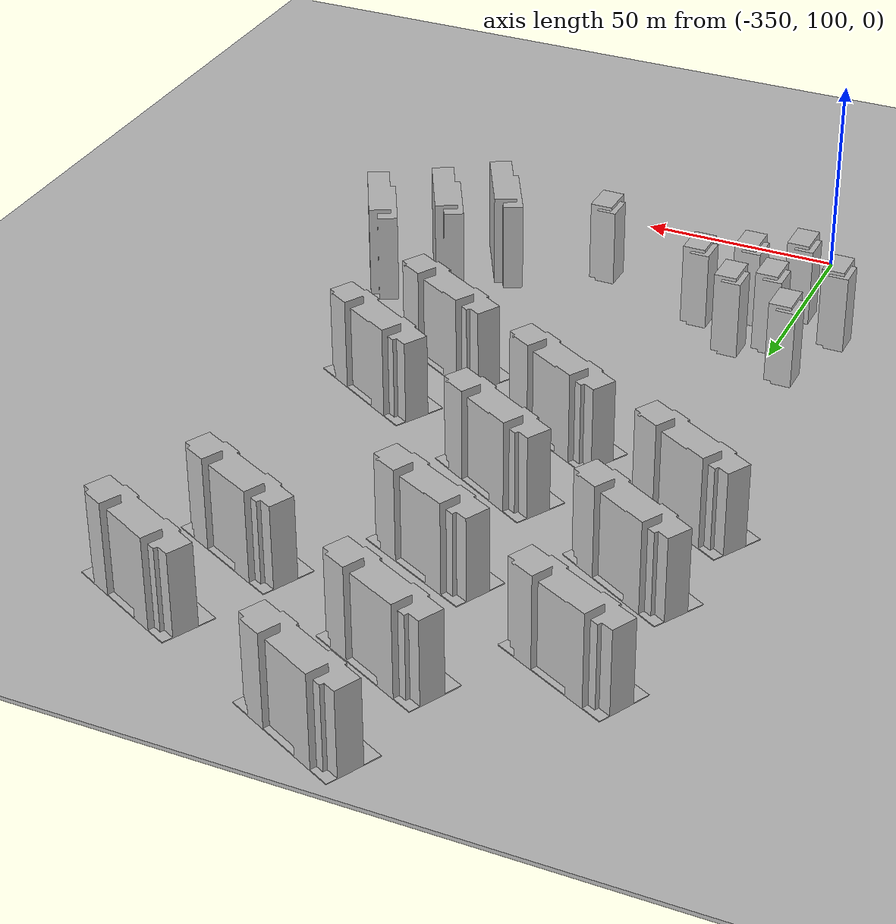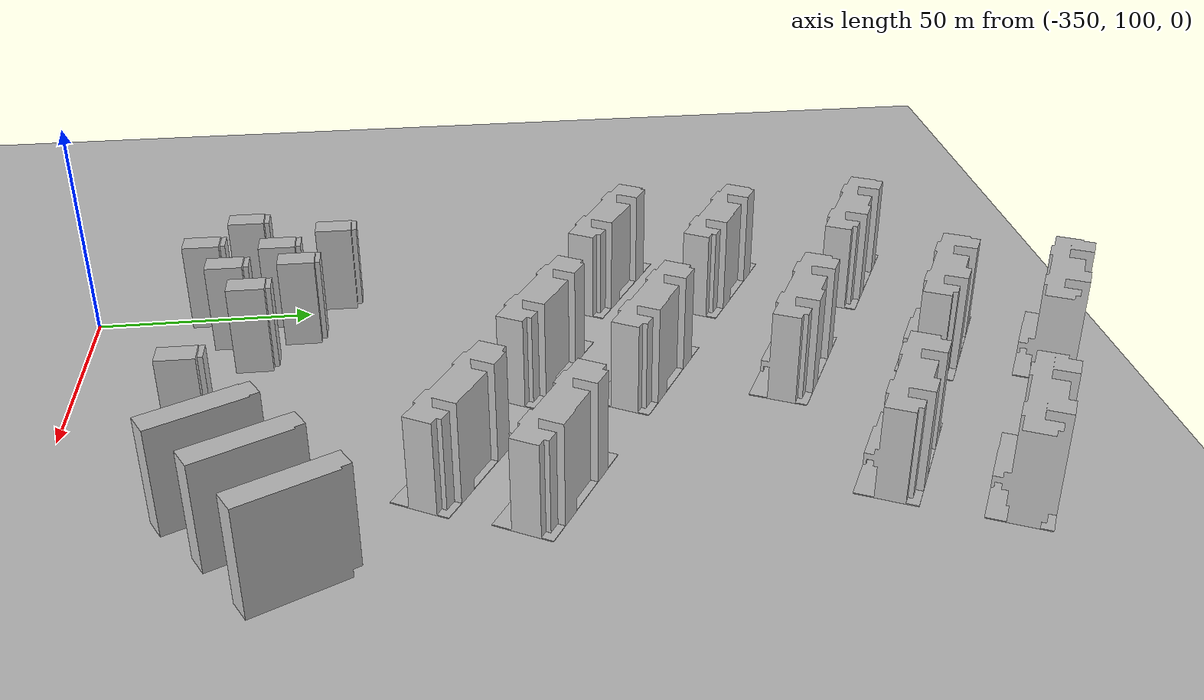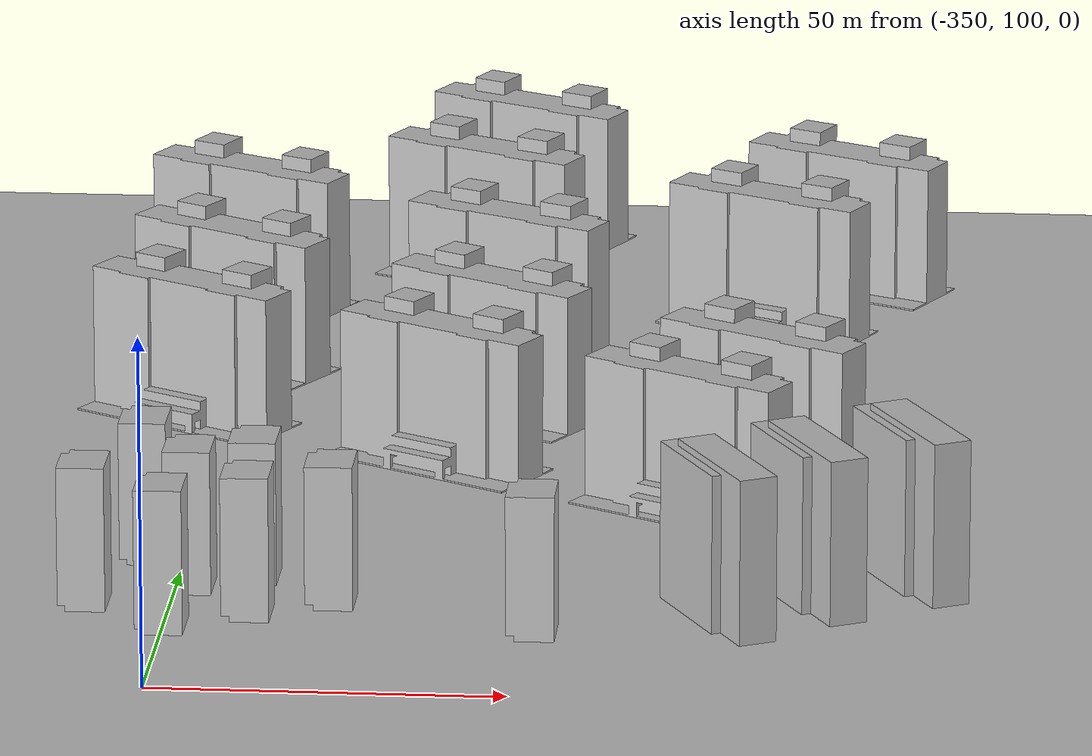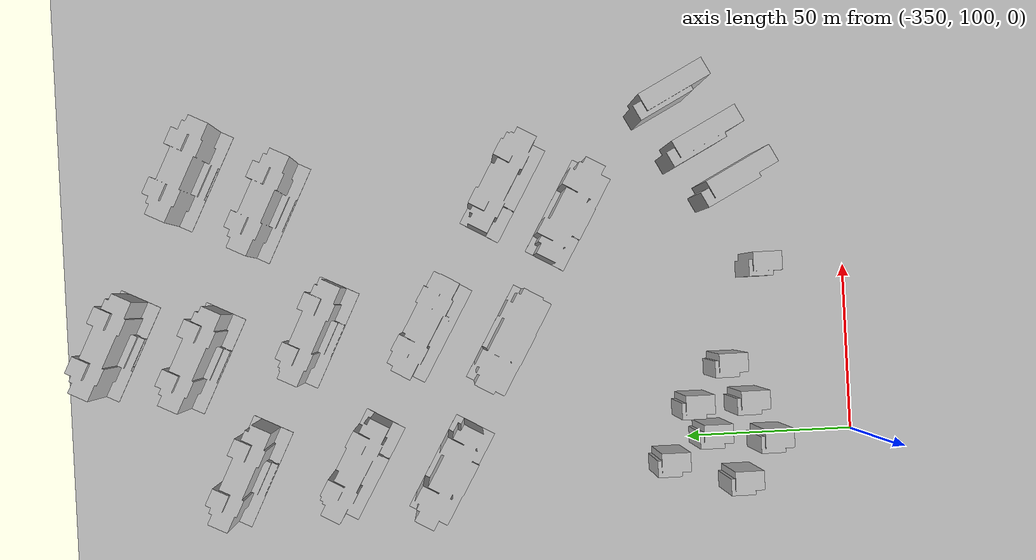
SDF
<sdf version="1.7">
 <world name="default">
  <model name="ground_plane">
   <static>1</static>
   <link name="link">
    <collision name="collision">
     <geometry><mesh><uri>model://ground_plane/scripts/plane.dae</uri><normal>0 0 1</normal></mesh></geometry>
     <surface><friction><ode><mu>100</mu><mu2>50</mu2></ode></friction></surface>
    </collision>
    <visual name="visual">
     <geometry><mesh><uri>model://ground_plane/scripts/plane.dae</uri><normal>0 0 1</normal></mesh></geometry>
     <material>
      <lighting>1</lighting>
      <script><uri>model://ground_plane/scripts/plane.jpg</uri><name>__default__</name></script>
      <shader type="pixel"/>
     </material>
    </visual>
   </link>
  </model>
  <model name="apartment0_clone">
   <static>1</static>
   <link name="link_0">
    <inertial>
     <mass>1</mass>
     <inertia>
      <ixx>0.166667</ixx>
      <ixy>0</ixy>
      <ixz>0</ixz>
      <iyy>0.166667</iyy>
      <iyz>0</iyz>
      <izz>0.166667</izz>
     </inertia>
    </inertial>
    <pose>0.000226 2e-06 0 0 -0 0</pose>
    <visual name="visual">
     <geometry>
      <mesh><uri>model://apartment0/scripts/apartment.dae</uri><scale>0.42 0.21 0.14</scale></mesh>
     </geometry>
     <material>
      <lighting>1</lighting>
      <script><uri>model://apartment0/scripts/building.jpg</uri><name>__default__</name></script>
      <shader type="pixel"/>
     </material>
    </visual>
    <collision name="collision">
     <geometry>
      <mesh><uri>model://apartment0/scripts/apartment.dae</uri><scale>0.42 0.21 0.14</scale></mesh>
     </geometry>
     <surface>
      <friction>
       <ode><mu>1</mu><mu2>1</mu2><fdir1>0 0 0</fdir1><slip1>0</slip1><slip2>0</slip2></ode>
       <torsional>
        <coefficient>1</coefficient>
        <patch_radius>0</patch_radius>
        <surface_radius>0</surface_radius>
        <use_patch_radius>1</use_patch_radius>
        <ode><slip>0</slip></ode>
       </torsional>
      </friction>
      <bounce><restitution_coefficient>0</restitution_coefficient><threshold>1e+06</threshold></bounce>
      <contact>
       <collide_without_contact>0</collide_without_contact>
       <collide_without_contact_bitmask>1</collide_without_contact_bitmask>
       <collide_bitmask>1</collide_bitmask>
       <ode>
        <soft_cfm>0</soft_cfm>
        <soft_erp>0.2</soft_erp>
        <kp>1e+13</kp>
        <kd>1</kd>
        <max_vel>0.01</max_vel>
        <min_depth>0</min_depth>
       </ode>
       <bullet>
        <split_impulse>1</split_impulse>
        <split_impulse_penetration_threshold>-0.01</split_impulse_penetration_threshold>
        <soft_cfm>0</soft_cfm>
        <soft_erp>0.2</soft_erp>
        <kp>1e+13</kp>
        <kd>1</kd>
       </bullet>
      </contact>
     </surface>
    </collision>
   </link>
   <static>0</static>
   <pose>-353.369 283.655 0.2281 0 0 -0.465657</pose>
  </model>
  <model name="apartment0_clone_0">
   <static>1</static>
   <link name="link_0">
    <inertial>
     <mass>1</mass>
     <inertia>
      <ixx>0.166667</ixx>
      <ixy>0</ixy>
      <ixz>0</ixz>
      <iyy>0.166667</iyy>
      <iyz>0</iyz>
      <izz>0.166667</izz>
     </inertia>
    </inertial>
    <pose>0.000226 2e-06 0 0 -0 0</pose>
    <visual name="visual">
     <geometry>
      <mesh><uri>model://apartment0/scripts/apartment.dae</uri><scale>0.42 0.21 0.14</scale></mesh>
     </geometry>
     <material>
      <lighting>1</lighting>
      <script><uri>model://apartment0/scripts/building.jpg</uri><name>__default__</name></script>
      <shader type="pixel"/>
     </material>
    </visual>
    <collision name="collision">
     <geometry>
      <mesh><uri>model://apartment0/scripts/apartment.dae</uri><scale>0.42 0.21 0.14</scale></mesh>
     </geometry>
     <surface>
      <friction>
       <ode><mu>1</mu><mu2>1</mu2><fdir1>0 0 0</fdir1><slip1>0</slip1><slip2>0</slip2></ode>
       <torsional>
        <coefficient>1</coefficient>
        <patch_radius>0</patch_radius>
        <surface_radius>0</surface_radius>
        <use_patch_radius>1</use_patch_radius>
        <ode><slip>0</slip></ode>
       </torsional>
      </friction>
      <bounce><restitution_coefficient>0</restitution_coefficient><threshold>1e+06</threshold></bounce>
      <contact>
       <collide_without_contact>0</collide_without_contact>
       <collide_without_contact_bitmask>1</collide_without_contact_bitmask>
       <collide_bitmask>1</collide_bitmask>
       <ode>
        <soft_cfm>0</soft_cfm>
        <soft_erp>0.2</soft_erp>
        <kp>1e+13</kp>
        <kd>1</kd>
        <max_vel>0.01</max_vel>
        <min_depth>0</min_depth>
       </ode>
       <bullet>
        <split_impulse>1</split_impulse>
        <split_impulse_penetration_threshold>-0.01</split_impulse_penetration_threshold>
        <soft_cfm>0</soft_cfm>
        <soft_erp>0.2</soft_erp>
        <kp>1e+13</kp>
        <kd>1</kd>
       </bullet>
      </contact>
     </surface>
    </collision>
   </link>
   <static>0</static>
   <pose>-312.127 261.396 0.2281 0 0 -0.465657</pose>
  </model>
  <model name="apartment0_clone_3">
   <static>1</static>
   <link name="link_0">
    <inertial>
     <mass>1</mass>
     <inertia>
      <ixx>0.166667</ixx>
      <ixy>0</ixy>
      <ixz>0</ixz>
      <iyy>0.166667</iyy>
      <iyz>0</iyz>
      <izz>0.166667</izz>
     </inertia>
    </inertial>
    <pose>0.000226 2e-06 0 0 -0 0</pose>
    <visual name="visual">
     <geometry>
      <mesh><uri>model://apartment0/scripts/apartment.dae</uri><scale>0.42 0.21 0.14</scale></mesh>
     </geometry>
     <material>
      <lighting>1</lighting>
      <script><uri>model://apartment0/scripts/building.jpg</uri><name>__default__</name></script>
      <shader type="pixel"/>
     </material>
    </visual>
    <collision name="collision">
     <geometry>
      <mesh><uri>model://apartment0/scripts/apartment.dae</uri><scale>0.42 0.21 0.14</scale></mesh>
     </geometry>
     <surface>
      <friction>
       <ode><mu>1</mu><mu2>1</mu2><fdir1>0 0 0</fdir1><slip1>0</slip1><slip2>0</slip2></ode>
       <torsional>
        <coefficient>1</coefficient>
        <patch_radius>0</patch_radius>
        <surface_radius>0</surface_radius>
        <use_patch_radius>1</use_patch_radius>
        <ode><slip>0</slip></ode>
       </torsional>
      </friction>
      <bounce><restitution_coefficient>0</restitution_coefficient><threshold>1e+06</threshold></bounce>
      <contact>
       <collide_without_contact>0</collide_without_contact>
       <collide_without_contact_bitmask>1</collide_without_contact_bitmask>
       <collide_bitmask>1</collide_bitmask>
       <ode>
        <soft_cfm>0</soft_cfm>
        <soft_erp>0.2</soft_erp>
        <kp>1e+13</kp>
        <kd>1</kd>
        <max_vel>0.01</max_vel>
        <min_depth>0</min_depth>
       </ode>
       <bullet>
        <split_impulse>1</split_impulse>
        <split_impulse_penetration_threshold>-0.01</split_impulse_penetration_threshold>
        <soft_cfm>0</soft_cfm>
        <soft_erp>0.2</soft_erp>
        <kp>1e+13</kp>
        <kd>1</kd>
       </bullet>
      </contact>
     </surface>
    </collision>
   </link>
   <static>0</static>
   <pose>-318.194 296.381 0.2281 0 0 -0.465657</pose>
  </model>
  <model name="apartment0_clone_4">
   <static>1</static>
   <link name="link_0">
    <inertial>
     <mass>1</mass>
     <inertia>
      <ixx>0.166667</ixx>
      <ixy>0</ixy>
      <ixz>0</ixz>
      <iyy>0.166667</iyy>
      <iyz>0</iyz>
      <izz>0.166667</izz>
     </inertia>
    </inertial>
    <pose>0.000226 2e-06 0 0 -0 0</pose>
    <visual name="visual">
     <geometry>
      <mesh><uri>model://apartment0/scripts/apartment.dae</uri><scale>0.42 0.21 0.14</scale></mesh>
     </geometry>
     <material>
      <lighting>1</lighting>
      <script><uri>model://apartment0/scripts/building.jpg</uri><name>__default__</name></script>
      <shader type="pixel"/>
     </material>
    </visual>
    <collision name="collision">
     <geometry>
      <mesh><uri>model://apartment0/scripts/apartment.dae</uri><scale>0.42 0.21 0.14</scale></mesh>
     </geometry>
     <surface>
      <friction>
       <ode><mu>1</mu><mu2>1</mu2><fdir1>0 0 0</fdir1><slip1>0</slip1><slip2>0</slip2></ode>
       <torsional>
        <coefficient>1</coefficient>
        <patch_radius>0</patch_radius>
        <surface_radius>0</surface_radius>
        <use_patch_radius>1</use_patch_radius>
        <ode><slip>0</slip></ode>
       </torsional>
      </friction>
      <bounce><restitution_coefficient>0</restitution_coefficient><threshold>1e+06</threshold></bounce>
      <contact>
       <collide_without_contact>0</collide_without_contact>
       <collide_without_contact_bitmask>1</collide_without_contact_bitmask>
       <collide_bitmask>1</collide_bitmask>
       <ode>
        <soft_cfm>0</soft_cfm>
        <soft_erp>0.2</soft_erp>
        <kp>1e+13</kp>
        <kd>1</kd>
        <max_vel>0.01</max_vel>
        <min_depth>0</min_depth>
       </ode>
       <bullet>
        <split_impulse>1</split_impulse>
        <split_impulse_penetration_threshold>-0.01</split_impulse_penetration_threshold>
        <soft_cfm>0</soft_cfm>
        <soft_erp>0.2</soft_erp>
        <kp>1e+13</kp>
        <kd>1</kd>
       </bullet>
      </contact>
     </surface>
    </collision>
   </link>
   <static>0</static>
   <pose>-273.417 274.194 0.2281 0 0 -0.465657</pose>
  </model>
  <model name="apartment0_clone_6">
   <static>1</static>
   <link name="link_0">
    <inertial>
     <mass>1</mass>
     <inertia>
      <ixx>0.166667</ixx>
      <ixy>0</ixy>
      <ixz>0</ixz>
      <iyy>0.166667</iyy>
      <iyz>0</iyz>
      <izz>0.166667</izz>
     </inertia>
    </inertial>
    <pose>0.000226 2e-06 0 0 -0 0</pose>
    <visual name="visual">
     <geometry>
      <mesh><uri>model://apartment0/scripts/apartment.dae</uri><scale>0.42 0.21 0.14</scale></mesh>
     </geometry>
     <material>
      <lighting>1</lighting>
      <script><uri>model://apartment0/scripts/building.jpg</uri><name>__default__</name></script>
      <shader type="pixel"/>
     </material>
    </visual>
    <collision name="collision">
     <geometry>
      <mesh><uri>model://apartment0/scripts/apartment.dae</uri><scale>0.42 0.21 0.14</scale></mesh>
     </geometry>
     <surface>
      <friction>
       <ode><mu>1</mu><mu2>1</mu2><fdir1>0 0 0</fdir1><slip1>0</slip1><slip2>0</slip2></ode>
       <torsional>
        <coefficient>1</coefficient>
        <patch_radius>0</patch_radius>
        <surface_radius>0</surface_radius>
        <use_patch_radius>1</use_patch_radius>
        <ode><slip>0</slip></ode>
       </torsional>
      </friction>
      <bounce><restitution_coefficient>0</restitution_coefficient><threshold>1e+06</threshold></bounce>
      <contact>
       <collide_without_contact>0</collide_without_contact>
       <collide_without_contact_bitmask>1</collide_without_contact_bitmask>
       <collide_bitmask>1</collide_bitmask>
       <ode>
        <soft_cfm>0</soft_cfm>
        <soft_erp>0.2</soft_erp>
        <kp>1e+13</kp>
        <kd>1</kd>
        <max_vel>0.01</max_vel>
        <min_depth>0</min_depth>
       </ode>
       <bullet>
        <split_impulse>1</split_impulse>
        <split_impulse_penetration_threshold>-0.01</split_impulse_penetration_threshold>
        <soft_cfm>0</soft_cfm>
        <soft_erp>0.2</soft_erp>
        <kp>1e+13</kp>
        <kd>1</kd>
       </bullet>
      </contact>
     </surface>
    </collision>
   </link>
   <static>0</static>
   <pose>-313.232 322.177 0.2281 0 0 -0.465657</pose>
  </model>
  <model name="apartment0_clone_7">
   <static>1</static>
   <link name="link_0">
    <inertial>
     <mass>1</mass>
     <inertia>
      <ixx>0.166667</ixx>
      <ixy>0</ixy>
      <ixz>0</ixz>
      <iyy>0.166667</iyy>
      <iyz>0</iyz>
      <izz>0.166667</izz>
     </inertia>
    </inertial>
    <pose>0.000226 2e-06 0 0 -0 0</pose>
    <visual name="visual">
     <geometry>
      <mesh><uri>model://apartment0/scripts/apartment.dae</uri><scale>0.42 0.21 0.14</scale></mesh>
     </geometry>
     <material>
      <lighting>1</lighting>
      <script><uri>model://apartment0/scripts/building.jpg</uri><name>__default__</name></script>
      <shader type="pixel"/>
     </material>
    </visual>
    <collision name="collision">
     <geometry>
      <mesh><uri>model://apartment0/scripts/apartment.dae</uri><scale>0.42 0.21 0.14</scale></mesh>
     </geometry>
     <surface>
      <friction>
       <ode><mu>1</mu><mu2>1</mu2><fdir1>0 0 0</fdir1><slip1>0</slip1><slip2>0</slip2></ode>
       <torsional>
        <coefficient>1</coefficient>
        <patch_radius>0</patch_radius>
        <surface_radius>0</surface_radius>
        <use_patch_radius>1</use_patch_radius>
        <ode><slip>0</slip></ode>
       </torsional>
      </friction>
      <bounce><restitution_coefficient>0</restitution_coefficient><threshold>1e+06</threshold></bounce>
      <contact>
       <collide_without_contact>0</collide_without_contact>
       <collide_without_contact_bitmask>1</collide_without_contact_bitmask>
       <collide_bitmask>1</collide_bitmask>
       <ode>
        <soft_cfm>0</soft_cfm>
        <soft_erp>0.2</soft_erp>
        <kp>1e+13</kp>
        <kd>1</kd>
        <max_vel>0.01</max_vel>
        <min_depth>0</min_depth>
       </ode>
       <bullet>
        <split_impulse>1</split_impulse>
        <split_impulse_penetration_threshold>-0.01</split_impulse_penetration_threshold>
        <soft_cfm>0</soft_cfm>
        <soft_erp>0.2</soft_erp>
        <kp>1e+13</kp>
        <kd>1</kd>
       </bullet>
      </contact>
     </surface>
    </collision>
   </link>
   <static>0</static>
   <pose>-262.559 297.286 0.2281 0 0 -0.465657</pose>
  </model>
  <model name="apartment1_0_clone_1_clone_25">
   <static>1</static>
   <link name="link_0">
    <inertial>
     <mass>1</mass>
     <inertia>
      <ixx>0.166667</ixx>
      <ixy>0</ixy>
      <ixz>0</ixz>
      <iyy>0.166667</iyy>
      <iyz>0</iyz>
      <izz>0.166667</izz>
     </inertia>
    </inertial>
    <pose>1e-06 -0 0 0 -0 0</pose>
    <visual name="visual">
     <geometry>
      <mesh><uri>model://apartment1/scripts/apartment1.dae</uri><scale>0.14 0.14 0.175</scale></mesh>
     </geometry>
     <material>
      <lighting>1</lighting>
      <script><uri>model://apartment1/scripts/apartment1.jpg</uri><name>__default__</name></script>
      <shader type="pixel"/>
     </material>
    </visual>
    <collision name="collision">
     <geometry>
      <mesh><uri>model://apartment1/scripts/apartment1.dae</uri><scale>0.14 0.14 0.175</scale></mesh>
     </geometry>
     <surface>
      <friction>
       <ode><mu>1</mu><mu2>1</mu2><fdir1>0 0 0</fdir1><slip1>0</slip1><slip2>0</slip2></ode>
       <torsional>
        <coefficient>1</coefficient>
        <patch_radius>0</patch_radius>
        <surface_radius>0</surface_radius>
        <use_patch_radius>1</use_patch_radius>
        <ode><slip>0</slip></ode>
       </torsional>
      </friction>
      <bounce><restitution_coefficient>0</restitution_coefficient><threshold>1e+06</threshold></bounce>
      <contact>
       <collide_without_contact>0</collide_without_contact>
       <collide_without_contact_bitmask>1</collide_without_contact_bitmask>
       <collide_bitmask>1</collide_bitmask>
       <ode>
        <soft_cfm>0</soft_cfm>
        <soft_erp>0.2</soft_erp>
        <kp>1e+13</kp>
        <kd>1</kd>
        <max_vel>0.01</max_vel>
        <min_depth>0</min_depth>
       </ode>
       <bullet>
        <split_impulse>1</split_impulse>
        <split_impulse_penetration_threshold>-0.01</split_impulse_penetration_threshold>
        <soft_cfm>0</soft_cfm>
        <soft_erp>0.2</soft_erp>
        <kp>1e+13</kp>
        <kd>1</kd>
       </bullet>
      </contact>
     </surface>
    </collision>
   </link>
   <static>0</static>
   <pose>-298.057 127.474 0 0 -0 0</pose>
  </model>
  <model name="apartment1_0_clone_1_clone_30">
   <static>1</static>
   <link name="link_0">
    <inertial>
     <mass>1</mass>
     <inertia>
      <ixx>0.166667</ixx>
      <ixy>0</ixy>
      <ixz>0</ixz>
      <iyy>0.166667</iyy>
      <iyz>0</iyz>
      <izz>0.166667</izz>
     </inertia>
    </inertial>
    <pose>1e-06 -0 0 0 -0 0</pose>
    <visual name="visual">
     <geometry>
      <mesh><uri>model://apartment1/scripts/apartment1.dae</uri><scale>0.14 0.14 0.175</scale></mesh>
     </geometry>
     <material>
      <lighting>1</lighting>
      <script><uri>model://apartment1/scripts/apartment1.jpg</uri><name>__default__</name></script>
      <shader type="pixel"/>
     </material>
    </visual>
    <collision name="collision">
     <geometry>
      <mesh><uri>model://apartment1/scripts/apartment1.dae</uri><scale>0.14 0.14 0.175</scale></mesh>
     </geometry>
     <surface>
      <friction>
       <ode><mu>1</mu><mu2>1</mu2><fdir1>0 0 0</fdir1><slip1>0</slip1><slip2>0</slip2></ode>
       <torsional>
        <coefficient>1</coefficient>
        <patch_radius>0</patch_radius>
        <surface_radius>0</surface_radius>
        <use_patch_radius>1</use_patch_radius>
        <ode><slip>0</slip></ode>
       </torsional>
      </friction>
      <bounce><restitution_coefficient>0</restitution_coefficient><threshold>1e+06</threshold></bounce>
      <contact>
       <collide_without_contact>0</collide_without_contact>
       <collide_without_contact_bitmask>1</collide_without_contact_bitmask>
       <collide_bitmask>1</collide_bitmask>
       <ode>
        <soft_cfm>0</soft_cfm>
        <soft_erp>0.2</soft_erp>
        <kp>1e+13</kp>
        <kd>1</kd>
        <max_vel>0.01</max_vel>
        <min_depth>0</min_depth>
       </ode>
       <bullet>
        <split_impulse>1</split_impulse>
        <split_impulse_penetration_threshold>-0.01</split_impulse_penetration_threshold>
        <soft_cfm>0</soft_cfm>
        <soft_erp>0.2</soft_erp>
        <kp>1e+13</kp>
        <kd>1</kd>
       </bullet>
      </contact>
     </surface>
    </collision>
   </link>
   <static>0</static>
   <pose>-349.689 126.522 0 0 -0 0</pose>
  </model>
  <model name="apartment1_0_clone_1_clone_31">
   <static>1</static>
   <link name="link_0">
    <inertial>
     <mass>1</mass>
     <inertia>
      <ixx>0.166667</ixx>
      <ixy>0</ixy>
      <ixz>0</ixz>
      <iyy>0.166667</iyy>
      <iyz>0</iyz>
      <izz>0.166667</izz>
     </inertia>
    </inertial>
    <pose>1e-06 -0 0 0 -0 0</pose>
    <visual name="visual">
     <geometry>
      <mesh><uri>model://apartment1/scripts/apartment1.dae</uri><scale>0.14 0.14 0.175</scale></mesh>
     </geometry>
     <material>
      <lighting>1</lighting>
      <script><uri>model://apartment1/scripts/apartment1.jpg</uri><name>__default__</name></script>
      <shader type="pixel"/>
     </material>
    </visual>
    <collision name="collision">
     <geometry>
      <mesh><uri>model://apartment1/scripts/apartment1.dae</uri><scale>0.14 0.14 0.175</scale></mesh>
     </geometry>
     <surface>
      <friction>
       <ode><mu>1</mu><mu2>1</mu2><fdir1>0 0 0</fdir1><slip1>0</slip1><slip2>0</slip2></ode>
       <torsional>
        <coefficient>1</coefficient>
        <patch_radius>0</patch_radius>
        <surface_radius>0</surface_radius>
        <use_patch_radius>1</use_patch_radius>
        <ode><slip>0</slip></ode>
       </torsional>
      </friction>
      <bounce><restitution_coefficient>0</restitution_coefficient><threshold>1e+06</threshold></bounce>
      <contact>
       <collide_without_contact>0</collide_without_contact>
       <collide_without_contact_bitmask>1</collide_without_contact_bitmask>
       <collide_bitmask>1</collide_bitmask>
       <ode>
        <soft_cfm>0</soft_cfm>
        <soft_erp>0.2</soft_erp>
        <kp>1e+13</kp>
        <kd>1</kd>
        <max_vel>0.01</max_vel>
        <min_depth>0</min_depth>
       </ode>
       <bullet>
        <split_impulse>1</split_impulse>
        <split_impulse_penetration_threshold>-0.01</split_impulse_penetration_threshold>
        <soft_cfm>0</soft_cfm>
        <soft_erp>0.2</soft_erp>
        <kp>1e+13</kp>
        <kd>1</kd>
       </bullet>
      </contact>
     </surface>
    </collision>
   </link>
   <static>0</static>
   <pose>-338.265 132.9 0 0 -0 0</pose>
  </model>
  <model name="apartment1_0_clone_1_clone_32">
   <static>1</static>
   <link name="link_0">
    <inertial>
     <mass>1</mass>
     <inertia>
      <ixx>0.166667</ixx>
      <ixy>0</ixy>
      <ixz>0</ixz>
      <iyy>0.166667</iyy>
      <iyz>0</iyz>
      <izz>0.166667</izz>
     </inertia>
    </inertial>
    <pose>1e-06 -0 0 0 -0 0</pose>
    <visual name="visual">
     <geometry>
      <mesh><uri>model://apartment1/scripts/apartment1.dae</uri><scale>0.14 0.14 0.175</scale></mesh>
     </geometry>
     <material>
      <lighting>1</lighting>
      <script><uri>model://apartment1/scripts/apartment1.jpg</uri><name>__default__</name></script>
      <shader type="pixel"/>
     </material>
    </visual>
    <collision name="collision">
     <geometry>
      <mesh><uri>model://apartment1/scripts/apartment1.dae</uri><scale>0.14 0.14 0.175</scale></mesh>
     </geometry>
     <surface>
      <friction>
       <ode><mu>1</mu><mu2>1</mu2><fdir1>0 0 0</fdir1><slip1>0</slip1><slip2>0</slip2></ode>
       <torsional>
        <coefficient>1</coefficient>
        <patch_radius>0</patch_radius>
        <surface_radius>0</surface_radius>
        <use_patch_radius>1</use_patch_radius>
        <ode><slip>0</slip></ode>
       </torsional>
      </friction>
      <bounce><restitution_coefficient>0</restitution_coefficient><threshold>1e+06</threshold></bounce>
      <contact>
       <collide_without_contact>0</collide_without_contact>
       <collide_without_contact_bitmask>1</collide_without_contact_bitmask>
       <collide_bitmask>1</collide_bitmask>
       <ode>
        <soft_cfm>0</soft_cfm>
        <soft_erp>0.2</soft_erp>
        <kp>1e+13</kp>
        <kd>1</kd>
        <max_vel>0.01</max_vel>
        <min_depth>0</min_depth>
       </ode>
       <bullet>
        <split_impulse>1</split_impulse>
        <split_impulse_penetration_threshold>-0.01</split_impulse_penetration_threshold>
        <soft_cfm>0</soft_cfm>
        <soft_erp>0.2</soft_erp>
        <kp>1e+13</kp>
        <kd>1</kd>
       </bullet>
      </contact>
     </surface>
    </collision>
   </link>
   <static>0</static>
   <pose>-327.074 138.759 0 0 -0 0</pose>
  </model>
  <model name="apartment1_0_clone_1_clone_36">
   <static>1</static>
   <link name="link_0">
    <inertial>
     <mass>1</mass>
     <inertia>
      <ixx>0.166667</ixx>
      <ixy>0</ixy>
      <ixz>0</ixz>
      <iyy>0.166667</iyy>
      <iyz>0</iyz>
      <izz>0.166667</izz>
     </inertia>
    </inertial>
    <pose>1e-06 -0 0 0 -0 0</pose>
    <visual name="visual">
     <geometry>
      <mesh><uri>model://apartment1/scripts/apartment1.dae</uri><scale>0.14 0.14 0.175</scale></mesh>
     </geometry>
     <material>
      <lighting>1</lighting>
      <script><uri>model://apartment1/scripts/apartment1.jpg</uri><name>__default__</name></script>
      <shader type="pixel"/>
     </material>
    </visual>
    <collision name="collision">
     <geometry>
      <mesh><uri>model://apartment1/scripts/apartment1.dae</uri><scale>0.14 0.14 0.175</scale></mesh>
     </geometry>
     <surface>
      <friction>
       <ode><mu>1</mu><mu2>1</mu2><fdir1>0 0 0</fdir1><slip1>0</slip1><slip2>0</slip2></ode>
       <torsional>
        <coefficient>1</coefficient>
        <patch_radius>0</patch_radius>
        <surface_radius>0</surface_radius>
        <use_patch_radius>1</use_patch_radius>
        <ode><slip>0</slip></ode>
       </torsional>
      </friction>
      <bounce><restitution_coefficient>0</restitution_coefficient><threshold>1e+06</threshold></bounce>
      <contact>
       <collide_without_contact>0</collide_without_contact>
       <collide_without_contact_bitmask>1</collide_without_contact_bitmask>
       <collide_bitmask>1</collide_bitmask>
       <ode>
        <soft_cfm>0</soft_cfm>
        <soft_erp>0.2</soft_erp>
        <kp>1e+13</kp>
        <kd>1</kd>
        <max_vel>0.01</max_vel>
        <min_depth>0</min_depth>
       </ode>
       <bullet>
        <split_impulse>1</split_impulse>
        <split_impulse_penetration_threshold>-0.01</split_impulse_penetration_threshold>
        <soft_cfm>0</soft_cfm>
        <soft_erp>0.2</soft_erp>
        <kp>1e+13</kp>
        <kd>1</kd>
       </bullet>
      </contact>
     </surface>
    </collision>
   </link>
   <static>0</static>
   <pose>-361.529 135.811 0 0 -0 0</pose>
  </model>
  <model name="apartment1_0_clone_1_clone_37">
   <static>1</static>
   <link name="link_0">
    <inertial>
     <mass>1</mass>
     <inertia>
      <ixx>0.166667</ixx>
      <ixy>0</ixy>
      <ixz>0</ixz>
      <iyy>0.166667</iyy>
      <iyz>0</iyz>
      <izz>0.166667</izz>
     </inertia>
    </inertial>
    <pose>1e-06 -0 0 0 -0 0</pose>
    <visual name="visual">
     <geometry>
      <mesh><uri>model://apartment1/scripts/apartment1.dae</uri><scale>0.14 0.14 0.175</scale></mesh>
     </geometry>
     <material>
      <lighting>1</lighting>
      <script><uri>model://apartment1/scripts/apartment1.jpg</uri><name>__default__</name></script>
      <shader type="pixel"/>
     </material>
    </visual>
    <collision name="collision">
     <geometry>
      <mesh><uri>model://apartment1/scripts/apartment1.dae</uri><scale>0.14 0.14 0.175</scale></mesh>
     </geometry>
     <surface>
      <friction>
       <ode><mu>1</mu><mu2>1</mu2><fdir1>0 0 0</fdir1><slip1>0</slip1><slip2>0</slip2></ode>
       <torsional>
        <coefficient>1</coefficient>
        <patch_radius>0</patch_radius>
        <surface_radius>0</surface_radius>
        <use_patch_radius>1</use_patch_radius>
        <ode><slip>0</slip></ode>
       </torsional>
      </friction>
      <bounce><restitution_coefficient>0</restitution_coefficient><threshold>1e+06</threshold></bounce>
      <contact>
       <collide_without_contact>0</collide_without_contact>
       <collide_without_contact_bitmask>1</collide_without_contact_bitmask>
       <collide_bitmask>1</collide_bitmask>
       <ode>
        <soft_cfm>0</soft_cfm>
        <soft_erp>0.2</soft_erp>
        <kp>1e+13</kp>
        <kd>1</kd>
        <max_vel>0.01</max_vel>
        <min_depth>0</min_depth>
       </ode>
       <bullet>
        <split_impulse>1</split_impulse>
        <split_impulse_penetration_threshold>-0.01</split_impulse_penetration_threshold>
        <soft_cfm>0</soft_cfm>
        <soft_erp>0.2</soft_erp>
        <kp>1e+13</kp>
        <kd>1</kd>
       </bullet>
      </contact>
     </surface>
    </collision>
   </link>
   <static>0</static>
   <pose>-347.555 144.127 0 0 -0 0</pose>
  </model>
  <model name="apartment1_0_clone_1_clone_38">
   <static>1</static>
   <link name="link_0">
    <inertial>
     <mass>1</mass>
     <inertia>
      <ixx>0.166667</ixx>
      <ixy>0</ixy>
      <ixz>0</ixz>
      <iyy>0.166667</iyy>
      <iyz>0</iyz>
      <izz>0.166667</izz>
     </inertia>
    </inertial>
    <pose>1e-06 -0 0 0 -0 0</pose>
    <visual name="visual">
     <geometry>
      <mesh><uri>model://apartment1/scripts/apartment1.dae</uri><scale>0.14 0.14 0.175</scale></mesh>
     </geometry>
     <material>
      <lighting>1</lighting>
      <script><uri>model://apartment1/scripts/apartment1.jpg</uri><name>__default__</name></script>
      <shader type="pixel"/>
     </material>
    </visual>
    <collision name="collision">
     <geometry>
      <mesh><uri>model://apartment1/scripts/apartment1.dae</uri><scale>0.14 0.14 0.175</scale></mesh>
     </geometry>
     <surface>
      <friction>
       <ode><mu>1</mu><mu2>1</mu2><fdir1>0 0 0</fdir1><slip1>0</slip1><slip2>0</slip2></ode>
       <torsional>
        <coefficient>1</coefficient>
        <patch_radius>0</patch_radius>
        <surface_radius>0</surface_radius>
        <use_patch_radius>1</use_patch_radius>
        <ode><slip>0</slip></ode>
       </torsional>
      </friction>
      <bounce><restitution_coefficient>0</restitution_coefficient><threshold>1e+06</threshold></bounce>
      <contact>
       <collide_without_contact>0</collide_without_contact>
       <collide_without_contact_bitmask>1</collide_without_contact_bitmask>
       <collide_bitmask>1</collide_bitmask>
       <ode>
        <soft_cfm>0</soft_cfm>
        <soft_erp>0.2</soft_erp>
        <kp>1e+13</kp>
        <kd>1</kd>
        <max_vel>0.01</max_vel>
        <min_depth>0</min_depth>
       </ode>
       <bullet>
        <split_impulse>1</split_impulse>
        <split_impulse_penetration_threshold>-0.01</split_impulse_penetration_threshold>
        <soft_cfm>0</soft_cfm>
        <soft_erp>0.2</soft_erp>
        <kp>1e+13</kp>
        <kd>1</kd>
       </bullet>
      </contact>
     </surface>
    </collision>
   </link>
   <static>0</static>
   <pose>-338.799 149.006 0 0 -0 0</pose>
  </model>
  <model name="apartment1_0_clone_1_clone_43">
   <static>1</static>
   <link name="link_0">
    <inertial>
     <mass>1</mass>
     <inertia>
      <ixx>0.166667</ixx>
      <ixy>0</ixy>
      <ixz>0</ixz>
      <iyy>0.166667</iyy>
      <iyz>0</iyz>
      <izz>0.166667</izz>
     </inertia>
    </inertial>
    <pose>1e-06 -0 0 0 -0 0</pose>
    <visual name="visual">
     <geometry>
      <mesh><uri>model://apartment1/scripts/apartment1.dae</uri><scale>0.14 0.14 0.175</scale></mesh>
     </geometry>
     <material>
      <lighting>1</lighting>
      <script><uri>model://apartment1/scripts/apartment1.jpg</uri><name>__default__</name></script>
      <shader type="pixel"/>
     </material>
    </visual>
    <collision name="collision">
     <geometry>
      <mesh><uri>model://apartment1/scripts/apartment1.dae</uri><scale>0.14 0.14 0.175</scale></mesh>
     </geometry>
     <surface>
      <friction>
       <ode><mu>1</mu><mu2>1</mu2><fdir1>0 0 0</fdir1><slip1>0</slip1><slip2>0</slip2></ode>
       <torsional>
        <coefficient>1</coefficient>
        <patch_radius>0</patch_radius>
        <surface_radius>0</surface_radius>
        <use_patch_radius>1</use_patch_radius>
        <ode><slip>0</slip></ode>
       </torsional>
      </friction>
      <bounce><restitution_coefficient>0</restitution_coefficient><threshold>1e+06</threshold></bounce>
      <contact>
       <collide_without_contact>0</collide_without_contact>
       <collide_without_contact_bitmask>1</collide_without_contact_bitmask>
       <collide_bitmask>1</collide_bitmask>
       <ode>
        <soft_cfm>0</soft_cfm>
        <soft_erp>0.2</soft_erp>
        <kp>1e+13</kp>
        <kd>1</kd>
        <max_vel>0.01</max_vel>
        <min_depth>0</min_depth>
       </ode>
       <bullet>
        <split_impulse>1</split_impulse>
        <split_impulse_penetration_threshold>-0.01</split_impulse_penetration_threshold>
        <soft_cfm>0</soft_cfm>
        <soft_erp>0.2</soft_erp>
        <kp>1e+13</kp>
        <kd>1</kd>
       </bullet>
      </contact>
     </surface>
    </collision>
   </link>
   <static>0</static>
   <pose>-355.174 156.832 0 0 -0 0</pose>
  </model>
  <model name="apartment0_clone_clone_clone_1">
   <static>1</static>
   <link name="link_0">
    <inertial>
     <mass>1</mass>
     <inertia>
      <ixx>0.166667</ixx>
      <ixy>0</ixy>
      <ixz>0</ixz>
      <iyy>0.166667</iyy>
      <iyz>0</iyz>
      <izz>0.166667</izz>
     </inertia>
    </inertial>
    <pose>0.000226 2e-06 0 0 -0 0</pose>
    <visual name="visual">
     <geometry>
      <mesh><uri>model://apartment0/scripts/apartment.dae</uri><scale>0.42 0.21 0.14</scale></mesh>
     </geometry>
     <material>
      <lighting>1</lighting>
      <script><uri>model://apartment0/scripts/building.jpg</uri><name>__default__</name></script>
      <shader type="pixel"/>
     </material>
    </visual>
    <collision name="collision">
     <geometry>
      <mesh><uri>model://apartment0/scripts/apartment.dae</uri><scale>0.42 0.21 0.14</scale></mesh>
     </geometry>
     <surface>
      <friction>
       <ode><mu>1</mu><mu2>1</mu2><fdir1>0 0 0</fdir1><slip1>0</slip1><slip2>0</slip2></ode>
       <torsional>
        <coefficient>1</coefficient>
        <patch_radius>0</patch_radius>
        <surface_radius>0</surface_radius>
        <use_patch_radius>1</use_patch_radius>
        <ode><slip>0</slip></ode>
       </torsional>
      </friction>
      <bounce><restitution_coefficient>0</restitution_coefficient><threshold>1e+06</threshold></bounce>
      <contact>
       <collide_without_contact>0</collide_without_contact>
       <collide_without_contact_bitmask>1</collide_without_contact_bitmask>
       <collide_bitmask>1</collide_bitmask>
       <ode>
        <soft_cfm>0</soft_cfm>
        <soft_erp>0.2</soft_erp>
        <kp>1e+13</kp>
        <kd>1</kd>
        <max_vel>0.01</max_vel>
        <min_depth>0</min_depth>
       </ode>
       <bullet>
        <split_impulse>1</split_impulse>
        <split_impulse_penetration_threshold>-0.01</split_impulse_penetration_threshold>
        <soft_cfm>0</soft_cfm>
        <soft_erp>0.2</soft_erp>
        <kp>1e+13</kp>
        <kd>1</kd>
       </bullet>
      </contact>
     </surface>
    </collision>
   </link>
   <static>0</static>
   <pose>-356.083 222.904 0.2281 0 0 -0.526265</pose>
  </model>
  <model name="apartment0_clone_clone_clone_1_clone">
   <static>1</static>
   <link name="link_0">
    <inertial>
     <mass>1</mass>
     <inertia>
      <ixx>0.166667</ixx>
      <ixy>0</ixy>
      <ixz>0</ixz>
      <iyy>0.166667</iyy>
      <iyz>0</iyz>
      <izz>0.166667</izz>
     </inertia>
    </inertial>
    <pose>0.000226 2e-06 0 0 -0 0</pose>
    <visual name="visual">
     <geometry>
      <mesh><uri>model://apartment0/scripts/apartment.dae</uri><scale>0.42 0.21 0.14</scale></mesh>
     </geometry>
     <material>
      <lighting>1</lighting>
      <script><uri>model://apartment0/scripts/building.jpg</uri><name>__default__</name></script>
      <shader type="pixel"/>
     </material>
    </visual>
    <collision name="collision">
     <geometry>
      <mesh><uri>model://apartment0/scripts/apartment.dae</uri><scale>0.42 0.21 0.14</scale></mesh>
     </geometry>
     <surface>
      <friction>
       <ode><mu>1</mu><mu2>1</mu2><fdir1>0 0 0</fdir1><slip1>0</slip1><slip2>0</slip2></ode>
       <torsional>
        <coefficient>1</coefficient>
        <patch_radius>0</patch_radius>
        <surface_radius>0</surface_radius>
        <use_patch_radius>1</use_patch_radius>
        <ode><slip>0</slip></ode>
       </torsional>
      </friction>
      <bounce><restitution_coefficient>0</restitution_coefficient><threshold>1e+06</threshold></bounce>
      <contact>
       <collide_without_contact>0</collide_without_contact>
       <collide_without_contact_bitmask>1</collide_without_contact_bitmask>
       <collide_bitmask>1</collide_bitmask>
       <ode>
        <soft_cfm>0</soft_cfm>
        <soft_erp>0.2</soft_erp>
        <kp>1e+13</kp>
        <kd>1</kd>
        <max_vel>0.01</max_vel>
        <min_depth>0</min_depth>
       </ode>
       <bullet>
        <split_impulse>1</split_impulse>
        <split_impulse_penetration_threshold>-0.01</split_impulse_penetration_threshold>
        <soft_cfm>0</soft_cfm>
        <soft_erp>0.2</soft_erp>
        <kp>1e+13</kp>
        <kd>1</kd>
       </bullet>
      </contact>
     </surface>
    </collision>
   </link>
   <static>0</static>
   <pose>-352.909 250.071 0.2281 0 0 -0.526265</pose>
  </model>
  <model name="apartment0_clone_clone_clone_1_clone_clone">
   <static>1</static>
   <link name="link_0">
    <inertial>
     <mass>1</mass>
     <inertia>
      <ixx>0.166667</ixx>
      <ixy>0</ixy>
      <ixz>0</ixz>
      <iyy>0.166667</iyy>
      <iyz>0</iyz>
      <izz>0.166667</izz>
     </inertia>
    </inertial>
    <pose>0.000226 2e-06 0 0 -0 0</pose>
    <visual name="visual">
     <geometry>
      <mesh><uri>model://apartment0/scripts/apartment.dae</uri><scale>0.42 0.21 0.14</scale></mesh>
     </geometry>
     <material>
      <lighting>1</lighting>
      <script><uri>model://apartment0/scripts/building.jpg</uri><name>__default__</name></script>
      <shader type="pixel"/>
     </material>
    </visual>
    <collision name="collision">
     <geometry>
      <mesh><uri>model://apartment0/scripts/apartment.dae</uri><scale>0.42 0.21 0.14</scale></mesh>
     </geometry>
     <surface>
      <friction>
       <ode><mu>1</mu><mu2>1</mu2><fdir1>0 0 0</fdir1><slip1>0</slip1><slip2>0</slip2></ode>
       <torsional>
        <coefficient>1</coefficient>
        <patch_radius>0</patch_radius>
        <surface_radius>0</surface_radius>
        <use_patch_radius>1</use_patch_radius>
        <ode><slip>0</slip></ode>
       </torsional>
      </friction>
      <bounce><restitution_coefficient>0</restitution_coefficient><threshold>1e+06</threshold></bounce>
      <contact>
       <collide_without_contact>0</collide_without_contact>
       <collide_without_contact_bitmask>1</collide_without_contact_bitmask>
       <collide_bitmask>1</collide_bitmask>
       <ode>
        <soft_cfm>0</soft_cfm>
        <soft_erp>0.2</soft_erp>
        <kp>1e+13</kp>
        <kd>1</kd>
        <max_vel>0.01</max_vel>
        <min_depth>0</min_depth>
       </ode>
       <bullet>
        <split_impulse>1</split_impulse>
        <split_impulse_penetration_threshold>-0.01</split_impulse_penetration_threshold>
        <soft_cfm>0</soft_cfm>
        <soft_erp>0.2</soft_erp>
        <kp>1e+13</kp>
        <kd>1</kd>
       </bullet>
      </contact>
     </surface>
    </collision>
   </link>
   <static>0</static>
   <pose>-312.101 227.585 0.2281 0 0 -0.526265</pose>
  </model>
  <model name="apartment0_clone_clone_clone_1_clone_clone_0">
   <static>1</static>
   <link name="link_0">
    <inertial>
     <mass>1</mass>
     <inertia>
      <ixx>0.166667</ixx>
      <ixy>0</ixy>
      <ixz>0</ixz>
      <iyy>0.166667</iyy>
      <iyz>0</iyz>
      <izz>0.166667</izz>
     </inertia>
    </inertial>
    <pose>0.000226 2e-06 0 0 -0 0</pose>
    <visual name="visual">
     <geometry>
      <mesh><uri>model://apartment0/scripts/apartment.dae</uri><scale>0.42 0.21 0.14</scale></mesh>
     </geometry>
     <material>
      <lighting>1</lighting>
      <script><uri>model://apartment0/scripts/building.jpg</uri><name>__default__</name></script>
      <shader type="pixel"/>
     </material>
    </visual>
    <collision name="collision">
     <geometry>
      <mesh><uri>model://apartment0/scripts/apartment.dae</uri><scale>0.42 0.21 0.14</scale></mesh>
     </geometry>
     <surface>
      <friction>
       <ode><mu>1</mu><mu2>1</mu2><fdir1>0 0 0</fdir1><slip1>0</slip1><slip2>0</slip2></ode>
       <torsional>
        <coefficient>1</coefficient>
        <patch_radius>0</patch_radius>
        <surface_radius>0</surface_radius>
        <use_patch_radius>1</use_patch_radius>
        <ode><slip>0</slip></ode>
       </torsional>
      </friction>
      <bounce><restitution_coefficient>0</restitution_coefficient><threshold>1e+06</threshold></bounce>
      <contact>
       <collide_without_contact>0</collide_without_contact>
       <collide_without_contact_bitmask>1</collide_without_contact_bitmask>
       <collide_bitmask>1</collide_bitmask>
       <ode>
        <soft_cfm>0</soft_cfm>
        <soft_erp>0.2</soft_erp>
        <kp>1e+13</kp>
        <kd>1</kd>
        <max_vel>0.01</max_vel>
        <min_depth>0</min_depth>
       </ode>
       <bullet>
        <split_impulse>1</split_impulse>
        <split_impulse_penetration_threshold>-0.01</split_impulse_penetration_threshold>
        <soft_cfm>0</soft_cfm>
        <soft_erp>0.2</soft_erp>
        <kp>1e+13</kp>
        <kd>1</kd>
       </bullet>
      </contact>
     </surface>
    </collision>
   </link>
   <static>0</static>
   <pose>-270.725 203.143 0.2281 0 0 -0.526265</pose>
  </model>
  <model name="apartment0_clone_clone_clone_1_clone_clone_1">
   <static>1</static>
   <link name="link_0">
    <inertial>
     <mass>1</mass>
     <inertia>
      <ixx>0.166667</ixx>
      <ixy>0</ixy>
      <ixz>0</ixz>
      <iyy>0.166667</iyy>
      <iyz>0</iyz>
      <izz>0.166667</izz>
     </inertia>
    </inertial>
    <pose>0.000226 2e-06 0 0 -0 0</pose>
    <visual name="visual">
     <geometry>
      <mesh><uri>model://apartment0/scripts/apartment.dae</uri><scale>0.42 0.21 0.14</scale></mesh>
     </geometry>
     <material>
      <lighting>1</lighting>
      <script><uri>model://apartment0/scripts/building.jpg</uri><name>__default__</name></script>
      <shader type="pixel"/>
     </material>
    </visual>
    <collision name="collision">
     <geometry>
      <mesh><uri>model://apartment0/scripts/apartment.dae</uri><scale>0.42 0.21 0.14</scale></mesh>
     </geometry>
     <surface>
      <friction>
       <ode><mu>1</mu><mu2>1</mu2><fdir1>0 0 0</fdir1><slip1>0</slip1><slip2>0</slip2></ode>
       <torsional>
        <coefficient>1</coefficient>
        <patch_radius>0</patch_radius>
        <surface_radius>0</surface_radius>
        <use_patch_radius>1</use_patch_radius>
        <ode><slip>0</slip></ode>
       </torsional>
      </friction>
      <bounce><restitution_coefficient>0</restitution_coefficient><threshold>1e+06</threshold></bounce>
      <contact>
       <collide_without_contact>0</collide_without_contact>
       <collide_without_contact_bitmask>1</collide_without_contact_bitmask>
       <collide_bitmask>1</collide_bitmask>
       <ode>
        <soft_cfm>0</soft_cfm>
        <soft_erp>0.2</soft_erp>
        <kp>1e+13</kp>
        <kd>1</kd>
        <max_vel>0.01</max_vel>
        <min_depth>0</min_depth>
       </ode>
       <bullet>
        <split_impulse>1</split_impulse>
        <split_impulse_penetration_threshold>-0.01</split_impulse_penetration_threshold>
        <soft_cfm>0</soft_cfm>
        <soft_erp>0.2</soft_erp>
        <kp>1e+13</kp>
        <kd>1</kd>
       </bullet>
      </contact>
     </surface>
    </collision>
   </link>
   <static>0</static>
   <pose>-317.531 203.542 0.2281 0 0 -0.526265</pose>
  </model>
  <model name="apartment0_clone_clone_clone_1_clone_clone_2">
   <static>1</static>
   <link name="link_0">
    <inertial>
     <mass>1</mass>
     <inertia>
      <ixx>0.166667</ixx>
      <ixy>0</ixy>
      <ixz>0</ixz>
      <iyy>0.166667</iyy>
      <iyz>0</iyz>
      <izz>0.166667</izz>
     </inertia>
    </inertial>
    <pose>0.000226 2e-06 0 0 -0 0</pose>
    <visual name="visual">
     <geometry>
      <mesh><uri>model://apartment0/scripts/apartment.dae</uri><scale>0.42 0.21 0.14</scale></mesh>
     </geometry>
     <material>
      <lighting>1</lighting>
      <script><uri>model://apartment0/scripts/building.jpg</uri><name>__default__</name></script>
      <shader type="pixel"/>
     </material>
    </visual>
    <collision name="collision">
     <geometry>
      <mesh><uri>model://apartment0/scripts/apartment.dae</uri><scale>0.42 0.21 0.14</scale></mesh>
     </geometry>
     <surface>
      <friction>
       <ode><mu>1</mu><mu2>1</mu2><fdir1>0 0 0</fdir1><slip1>0</slip1><slip2>0</slip2></ode>
       <torsional>
        <coefficient>1</coefficient>
        <patch_radius>0</patch_radius>
        <surface_radius>0</surface_radius>
        <use_patch_radius>1</use_patch_radius>
        <ode><slip>0</slip></ode>
       </torsional>
      </friction>
      <bounce><restitution_coefficient>0</restitution_coefficient><threshold>1e+06</threshold></bounce>
      <contact>
       <collide_without_contact>0</collide_without_contact>
       <collide_without_contact_bitmask>1</collide_without_contact_bitmask>
       <collide_bitmask>1</collide_bitmask>
       <ode>
        <soft_cfm>0</soft_cfm>
        <soft_erp>0.2</soft_erp>
        <kp>1e+13</kp>
        <kd>1</kd>
        <max_vel>0.01</max_vel>
        <min_depth>0</min_depth>
       </ode>
       <bullet>
        <split_impulse>1</split_impulse>
        <split_impulse_penetration_threshold>-0.01</split_impulse_penetration_threshold>
        <soft_cfm>0</soft_cfm>
        <soft_erp>0.2</soft_erp>
        <kp>1e+13</kp>
        <kd>1</kd>
       </bullet>
      </contact>
     </surface>
    </collision>
   </link>
   <static>0</static>
   <pose>-280.344 183.655 0.2281 0 0 -0.526265</pose>
  </model>
  <model name="apartment3_clone_13">
   <static>1</static>
   <link name="link_0">
    <inertial>
     <mass>1</mass>
     <inertia>
      <ixx>0.166667</ixx>
      <ixy>0</ixy>
      <ixz>0</ixz>
      <iyy>0.166667</iyy>
      <iyz>0</iyz>
      <izz>0.166667</izz>
     </inertia>
    </inertial>
    <pose>1e-06 -0 0 0 -0 0</pose>
    <visual name="visual">
     <geometry>
      <mesh><uri>model://apartment1/scripts/apartment1.dae</uri><scale>0.14 0.35 0.2</scale></mesh>
     </geometry>
     <material>
      <lighting>1</lighting>
      <script><uri>model://apartment1/scripts/apartment1.jpg</uri><name>__default__</name></script>
      <shader type="pixel"/>
     </material>
    </visual>
    <collision name="collision">
     <geometry>
      <mesh><uri>model://apartment1/scripts/apartment1.dae</uri><scale>0.14 0.35 0.2</scale></mesh>
     </geometry>
     <surface>
      <friction>
       <ode><mu>1</mu><mu2>1</mu2><fdir1>0 0 0</fdir1><slip1>0</slip1><slip2>0</slip2></ode>
       <torsional>
        <coefficient>1</coefficient>
        <patch_radius>0</patch_radius>
        <surface_radius>0</surface_radius>
        <use_patch_radius>1</use_patch_radius>
        <ode><slip>0</slip></ode>
       </torsional>
      </friction>
      <bounce><restitution_coefficient>0</restitution_coefficient><threshold>1e+06</threshold></bounce>
      <contact>
       <collide_without_contact>0</collide_without_contact>
       <collide_without_contact_bitmask>1</collide_without_contact_bitmask>
       <collide_bitmask>1</collide_bitmask>
       <ode>
        <soft_cfm>0</soft_cfm>
        <soft_erp>0.2</soft_erp>
        <kp>1e+13</kp>
        <kd>1</kd>
        <max_vel>0.01</max_vel>
        <min_depth>0</min_depth>
       </ode>
       <bullet>
        <split_impulse>1</split_impulse>
        <split_impulse_penetration_threshold>-0.01</split_impulse_penetration_threshold>
        <soft_cfm>0</soft_cfm>
        <soft_erp>0.2</soft_erp>
        <kp>1e+13</kp>
        <kd>1</kd>
       </bullet>
      </contact>
     </surface>
    </collision>
   </link>
   <static>0</static>
   <pose>-245.934 152.402 0 0 -0 0.481312</pose>
  </model>
  <model name="apartment3_clone_14">
   <static>1</static>
   <link name="link_0">
    <inertial>
     <mass>1</mass>
     <inertia>
      <ixx>0.166667</ixx>
      <ixy>0</ixy>
      <ixz>0</ixz>
      <iyy>0.166667</iyy>
      <iyz>0</iyz>
      <izz>0.166667</izz>
     </inertia>
    </inertial>
    <pose>1e-06 -0 0 0 -0 0</pose>
    <visual name="visual">
     <geometry>
      <mesh><uri>model://apartment1/scripts/apartment1.dae</uri><scale>0.14 0.35 0.2</scale></mesh>
     </geometry>
     <material>
      <lighting>1</lighting>
      <script><uri>model://apartment1/scripts/apartment1.jpg</uri><name>__default__</name></script>
      <shader type="pixel"/>
     </material>
    </visual>
    <collision name="collision">
     <geometry>
      <mesh><uri>model://apartment1/scripts/apartment1.dae</uri><scale>0.14 0.35 0.2</scale></mesh>
     </geometry>
     <surface>
      <friction>
       <ode><mu>1</mu><mu2>1</mu2><fdir1>0 0 0</fdir1><slip1>0</slip1><slip2>0</slip2></ode>
       <torsional>
        <coefficient>1</coefficient>
        <patch_radius>0</patch_radius>
        <surface_radius>0</surface_radius>
        <use_patch_radius>1</use_patch_radius>
        <ode><slip>0</slip></ode>
       </torsional>
      </friction>
      <bounce><restitution_coefficient>0</restitution_coefficient><threshold>1e+06</threshold></bounce>
      <contact>
       <collide_without_contact>0</collide_without_contact>
       <collide_without_contact_bitmask>1</collide_without_contact_bitmask>
       <collide_bitmask>1</collide_bitmask>
       <ode>
        <soft_cfm>0</soft_cfm>
        <soft_erp>0.2</soft_erp>
        <kp>1e+13</kp>
        <kd>1</kd>
        <max_vel>0.01</max_vel>
        <min_depth>0</min_depth>
       </ode>
       <bullet>
        <split_impulse>1</split_impulse>
        <split_impulse_penetration_threshold>-0.01</split_impulse_penetration_threshold>
        <soft_cfm>0</soft_cfm>
        <soft_erp>0.2</soft_erp>
        <kp>1e+13</kp>
        <kd>1</kd>
       </bullet>
      </contact>
     </surface>
    </collision>
   </link>
   <static>0</static>
   <pose>-259.907 143.443 0 0 -0 0.481312</pose>
  </model>
  <model name="apartment3_clone_16">
   <static>1</static>
   <link name="link_0">
    <inertial>
     <mass>1</mass>
     <inertia>
      <ixx>0.166667</ixx>
      <ixy>0</ixy>
      <ixz>0</ixz>
      <iyy>0.166667</iyy>
      <iyz>0</iyz>
      <izz>0.166667</izz>
     </inertia>
    </inertial>
    <pose>1e-06 -0 0 0 -0 0</pose>
    <visual name="visual">
     <geometry>
      <mesh><uri>model://apartment1/scripts/apartment1.dae</uri><scale>0.14 0.35 0.2</scale></mesh>
     </geometry>
     <material>
      <lighting>1</lighting>
      <script><uri>model://apartment1/scripts/apartment1.jpg</uri><name>__default__</name></script>
      <shader type="pixel"/>
     </material>
    </visual>
    <collision name="collision">
     <geometry>
      <mesh><uri>model://apartment1/scripts/apartment1.dae</uri><scale>0.14 0.35 0.2</scale></mesh>
     </geometry>
     <surface>
      <friction>
       <ode><mu>1</mu><mu2>1</mu2><fdir1>0 0 0</fdir1><slip1>0</slip1><slip2>0</slip2></ode>
       <torsional>
        <coefficient>1</coefficient>
        <patch_radius>0</patch_radius>
        <surface_radius>0</surface_radius>
        <use_patch_radius>1</use_patch_radius>
        <ode><slip>0</slip></ode>
       </torsional>
      </friction>
      <bounce><restitution_coefficient>0</restitution_coefficient><threshold>1e+06</threshold></bounce>
      <contact>
       <collide_without_contact>0</collide_without_contact>
       <collide_without_contact_bitmask>1</collide_without_contact_bitmask>
       <collide_bitmask>1</collide_bitmask>
       <ode>
        <soft_cfm>0</soft_cfm>
        <soft_erp>0.2</soft_erp>
        <kp>1e+13</kp>
        <kd>1</kd>
        <max_vel>0.01</max_vel>
        <min_depth>0</min_depth>
       </ode>
       <bullet>
        <split_impulse>1</split_impulse>
        <split_impulse_penetration_threshold>-0.01</split_impulse_penetration_threshold>
        <soft_cfm>0</soft_cfm>
        <soft_erp>0.2</soft_erp>
        <kp>1e+13</kp>
        <kd>1</kd>
       </bullet>
      </contact>
     </surface>
    </collision>
   </link>
   <static>0</static>
   <pose>-272.004 134.119 0 0 -0 0.481312</pose>
  </model>
 </world>
</sdf>
